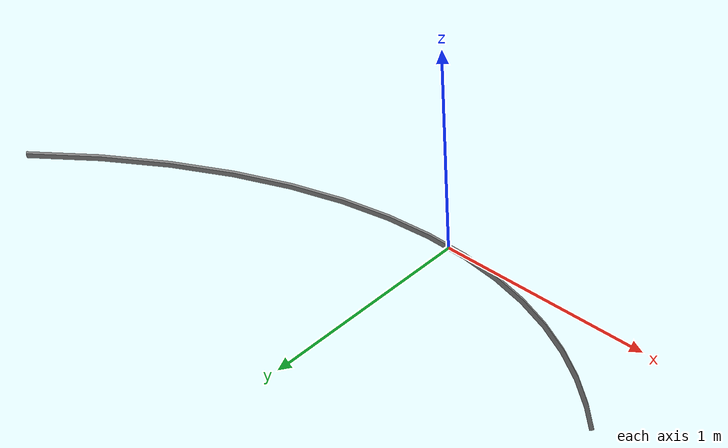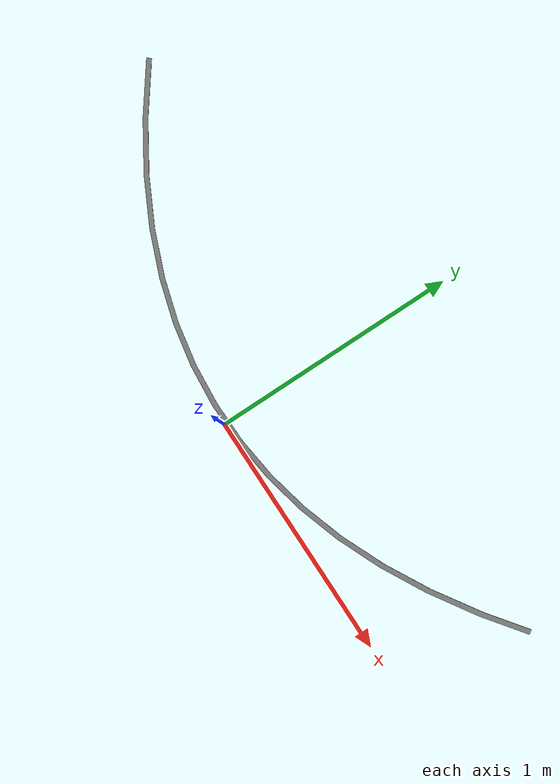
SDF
<?xml version="1.0" encoding="utf-8"?>
<sdf version="1.5">
  <model name="Chain">
    <pose>0 0 0.00951755354550247 0 0 0</pose>

    <link name="Links">
      <gravity>1</gravity>
      <self_collide>0</self_collide>
      <pose>-0.0314896625712647 0.164480043251385 1.16415771845254E-18 0 0 0</pose>
      <must_be_base_link>1</must_be_base_link>
      <velocity_decay>
        <linear>0</linear>
        <angular>0</angular>
      </velocity_decay>
      <inertial>
        <mass>0.316254564967284</mass>
        <pose>0 0 0 0 0 0</pose>
        <inertia>
          <ixx>0.00560729215096961</ixx>
          <ixy>5.35325729003074E-06</ixy>
          <ixz>6.73025702580464E-22</ixz>
          <iyy>0.161426351358392</iyy>
          <iyz>6.76761408956365E-22</iyz>
          <izz>0.167033643509362</izz>
        </inertia>
      </inertial>
      <collision name="Links_collision">
        <pose>5.69333819272225E-05 -0.154962489705883 -1.16415771845254E-18 0 0 0</pose>
        <geometry>
          <mesh>
            <scale>1 1 1</scale>
            <uri>model://Chain/meshes/Links_col.STL</uri>
          </mesh>
        </geometry>
        <surface>
          <contact>
            <ode />
          </contact>
          <friction>
            <ode>
              <mu>0</mu>
              <mu2>0</mu2>
            </ode>
          </friction>
        </surface>
      </collision>
      <visual name="Links_visual">
        <pose>5.69333819272225E-05 -0.154962489705883 -1.16415771845254E-18 0 0 0</pose>
        <material>
          <ambient>0.501960784313725 0.501960784313725 0.501960784313725 1</ambient>
          <diffuse>0.501960784313725 0.501960784313725 0.501960784313725 1</diffuse>
        </material>
        <geometry>
          <mesh>
            <scale>1 1 1</scale>
            <uri>model://Chain/meshes/Links.STL</uri>
          </mesh>
        </geometry>
      </visual>
    </link>
    <joint name="chain1-World" type="fixed">
      <parent>world</parent>
      <child>Links</child>
   </joint>
  </model>
</sdf>
